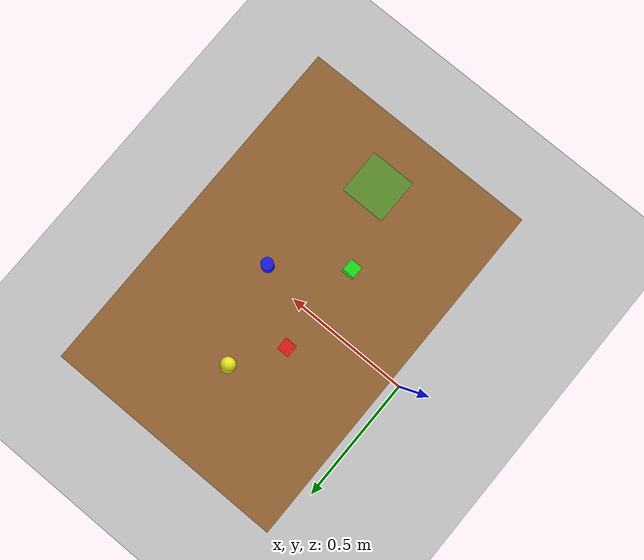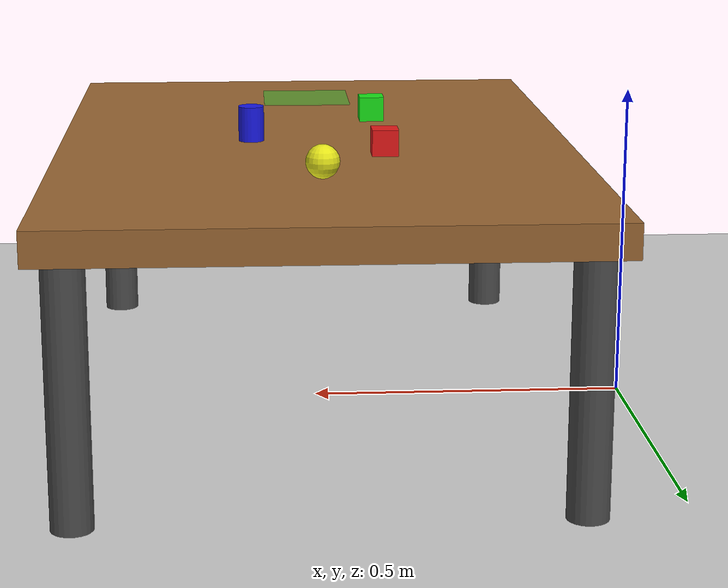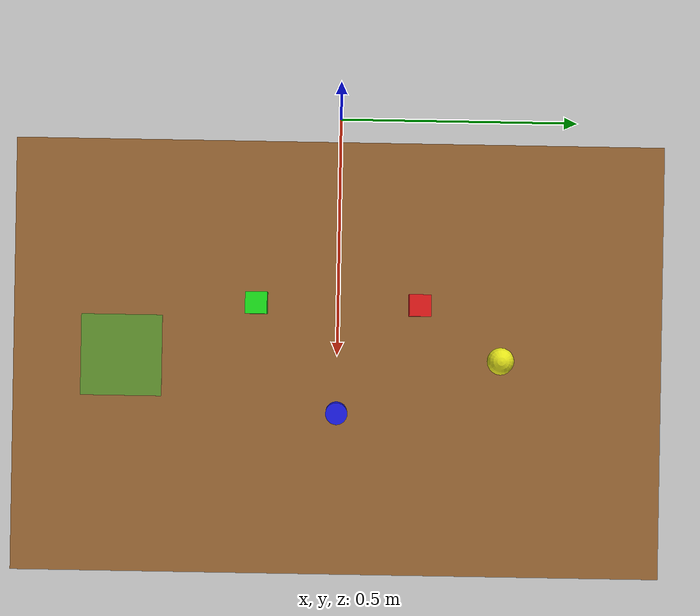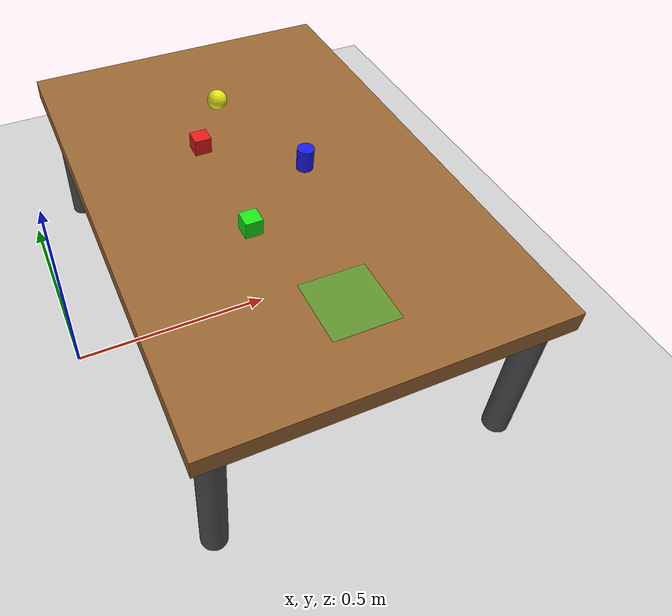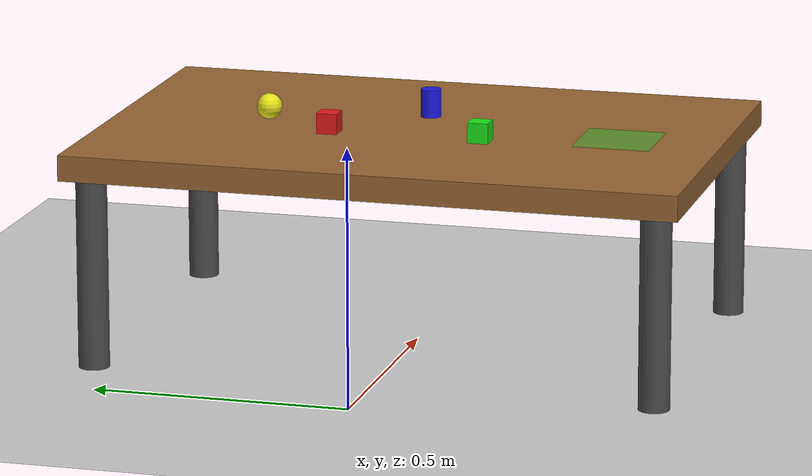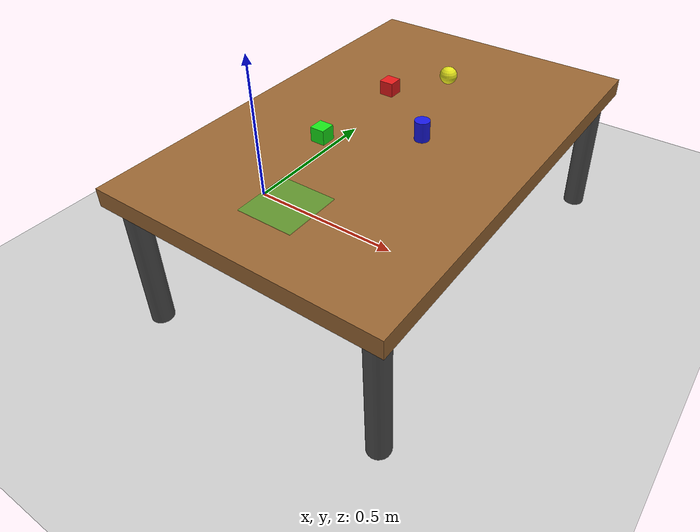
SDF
<?xml version="1.0" ?>
<sdf version="1.7">
  <world name="pick_and_place_world">

    <!-- Physics -->
    <physics name="1ms" type="ignored">
      <max_step_size>0.001</max_step_size>
      <real_time_factor>1.0</real_time_factor>
    </physics>

    <!-- Plugins for GZ Sim -->
    <plugin filename="libgz-sim-physics-system.so" name="gz::sim::systems::Physics"/>
    <plugin filename="libgz-sim-user-commands-system.so" name="gz::sim::systems::UserCommands"/>
    <plugin filename="libgz-sim-scene-broadcaster-system.so" name="gz::sim::systems::SceneBroadcaster"/>
    <plugin filename="libgz-sim-contact-system.so" name="gz::sim::systems::Contact"/>

    <!-- Lighting -->
    <light type="directional" name="sun">
      <cast_shadows>true</cast_shadows>
      <pose>0 0 10 0 0 0</pose>
      <diffuse>0.8 0.8 0.8 1</diffuse>
      <specular>0.2 0.2 0.2 1</specular>
      <attenuation>
        <range>1000</range>
        <constant>0.9</constant>
        <linear>0.01</linear>
        <quadratic>0.001</quadratic>
      </attenuation>
      <direction>-0.5 0.1 -0.9</direction>
    </light>

    <!-- Ground Plane -->
    <model name="ground_plane">
      <static>true</static>
      <link name="link">
        <collision name="collision">
          <geometry>
            <plane>
              <normal>0 0 1</normal>
              <size>100 100</size>
            </plane>
          </geometry>
        </collision>
        <visual name="visual">
          <geometry>
            <plane>
              <normal>0 0 1</normal>
              <size>100 100</size>
            </plane>
          </geometry>
          <material>
            <ambient>0.8 0.8 0.8 1</ambient>
            <diffuse>0.8 0.8 0.8 1</diffuse>
            <specular>0.8 0.8 0.8 1</specular>
          </material>
        </visual>
      </link>
    </model>

    <!-- Work Table -->
    <model name="work_table">
      <static>true</static>
      <pose>0.5 0 0.4 0 0 0</pose>
      <link name="table_top">
        <collision name="collision">
          <geometry>
            <box>
              <size>0.8 1.2 0.05</size>
            </box>
          </geometry>
        </collision>
        <visual name="visual">
          <geometry>
            <box>
              <size>0.8 1.2 0.05</size>
            </box>
          </geometry>
          <material>
            <ambient>0.6 0.4 0.2 1</ambient>
            <diffuse>0.6 0.4 0.2 1</diffuse>
            <specular>0.1 0.1 0.1 1</specular>
          </material>
        </visual>
      </link>
      <!-- Table legs -->
      <link name="leg1">
        <pose>0.35 0.55 -0.2 0 0 0</pose>
        <collision name="collision">
          <geometry>
            <cylinder>
              <radius>0.03</radius>
              <length>0.4</length>
            </cylinder>
          </geometry>
        </collision>
        <visual name="visual">
          <geometry>
            <cylinder>
              <radius>0.03</radius>
              <length>0.4</length>
            </cylinder>
          </geometry>
          <material>
            <ambient>0.3 0.3 0.3 1</ambient>
            <diffuse>0.3 0.3 0.3 1</diffuse>
          </material>
        </visual>
      </link>
      <link name="leg2">
        <pose>0.35 -0.55 -0.2 0 0 0</pose>
        <collision name="collision">
          <geometry>
            <cylinder>
              <radius>0.03</radius>
              <length>0.4</length>
            </cylinder>
          </geometry>
        </collision>
        <visual name="visual">
          <geometry>
            <cylinder>
              <radius>0.03</radius>
              <length>0.4</length>
            </cylinder>
          </geometry>
          <material>
            <ambient>0.3 0.3 0.3 1</ambient>
            <diffuse>0.3 0.3 0.3 1</diffuse>
          </material>
        </visual>
      </link>
      <link name="leg3">
        <pose>-0.35 0.55 -0.2 0 0 0</pose>
        <collision name="collision">
          <geometry>
            <cylinder>
              <radius>0.03</radius>
              <length>0.4</length>
            </cylinder>
          </geometry>
        </collision>
        <visual name="visual">
          <geometry>
            <cylinder>
              <radius>0.03</radius>
              <length>0.4</length>
            </cylinder>
          </geometry>
          <material>
            <ambient>0.3 0.3 0.3 1</ambient>
            <diffuse>0.3 0.3 0.3 1</diffuse>
          </material>
        </visual>
      </link>
      <link name="leg4">
        <pose>-0.35 -0.55 -0.2 0 0 0</pose>
        <collision name="collision">
          <geometry>
            <cylinder>
              <radius>0.03</radius>
              <length>0.4</length>
            </cylinder>
          </geometry>
        </collision>
        <visual name="visual">
          <geometry>
            <cylinder>
              <radius>0.03</radius>
              <length>0.4</length>
            </cylinder>
          </geometry>
          <material>
            <ambient>0.3 0.3 0.3 1</ambient>
            <diffuse>0.3 0.3 0.3 1</diffuse>
          </material>
        </visual>
      </link>
      <joint name="leg1_joint" type="fixed">
        <parent>table_top</parent>
        <child>leg1</child>
      </joint>
      <joint name="leg2_joint" type="fixed">
        <parent>table_top</parent>
        <child>leg2</child>
      </joint>
      <joint name="leg3_joint" type="fixed">
        <parent>table_top</parent>
        <child>leg3</child>
      </joint>
      <joint name="leg4_joint" type="fixed">
        <parent>table_top</parent>
        <child>leg4</child>
      </joint>
    </model>

    <!-- Red Cube - Object to pick -->
    <model name="red_cube">
      <pose>0.4 0.15 0.45 0 0 0</pose>
      <link name="link">
        <inertial>
          <mass>0.1</mass>
          <inertia>
            <ixx>0.000017</ixx>
            <ixy>0</ixy>
            <ixz>0</ixz>
            <iyy>0.000017</iyy>
            <iyz>0</iyz>
            <izz>0.000017</izz>
          </inertia>
        </inertial>
        <collision name="collision">
          <geometry>
            <box>
              <size>0.04 0.04 0.04</size>
            </box>
          </geometry>
          <surface>
            <friction>
              <ode>
                <mu>1.0</mu>
                <mu2>1.0</mu2>
              </ode>
            </friction>
          </surface>
        </collision>
        <visual name="visual">
          <geometry>
            <box>
              <size>0.04 0.04 0.04</size>
            </box>
          </geometry>
          <material>
            <ambient>0.9 0.1 0.1 1</ambient>
            <diffuse>0.9 0.1 0.1 1</diffuse>
            <specular>0.5 0.5 0.5 1</specular>
          </material>
        </visual>
      </link>
    </model>

    <!-- Green Cube -->
    <model name="green_cube">
      <pose>0.4 -0.15 0.45 0 0 0</pose>
      <link name="link">
        <inertial>
          <mass>0.1</mass>
          <inertia>
            <ixx>0.000017</ixx>
            <ixy>0</ixy>
            <ixz>0</ixz>
            <iyy>0.000017</iyy>
            <iyz>0</iyz>
            <izz>0.000017</izz>
          </inertia>
        </inertial>
        <collision name="collision">
          <geometry>
            <box>
              <size>0.04 0.04 0.04</size>
            </box>
          </geometry>
          <surface>
            <friction>
              <ode>
                <mu>1.0</mu>
                <mu2>1.0</mu2>
              </ode>
            </friction>
          </surface>
        </collision>
        <visual name="visual">
          <geometry>
            <box>
              <size>0.04 0.04 0.04</size>
            </box>
          </geometry>
          <material>
            <ambient>0.1 0.9 0.1 1</ambient>
            <diffuse>0.1 0.9 0.1 1</diffuse>
            <specular>0.5 0.5 0.5 1</specular>
          </material>
        </visual>
      </link>
    </model>

    <!-- Blue Cylinder -->
    <model name="blue_cylinder">
      <pose>0.6 0 0.45 0 0 0</pose>
      <link name="link">
        <inertial>
          <mass>0.15</mass>
          <inertia>
            <ixx>0.000025</ixx>
            <ixy>0</ixy>
            <ixz>0</ixz>
            <iyy>0.000025</iyy>
            <iyz>0</iyz>
            <izz>0.000018</izz>
          </inertia>
        </inertial>
        <collision name="collision">
          <geometry>
            <cylinder>
              <radius>0.02</radius>
              <length>0.06</length>
            </cylinder>
          </geometry>
          <surface>
            <friction>
              <ode>
                <mu>1.0</mu>
                <mu2>1.0</mu2>
              </ode>
            </friction>
          </surface>
        </collision>
        <visual name="visual">
          <geometry>
            <cylinder>
              <radius>0.02</radius>
              <length>0.06</length>
            </cylinder>
          </geometry>
          <material>
            <ambient>0.1 0.1 0.9 1</ambient>
            <diffuse>0.1 0.1 0.9 1</diffuse>
            <specular>0.5 0.5 0.5 1</specular>
          </material>
        </visual>
      </link>
    </model>

    <!-- Yellow Sphere -->
    <model name="yellow_sphere">
      <pose>0.5 0.3 0.45 0 0 0</pose>
      <link name="link">
        <inertial>
          <mass>0.08</mass>
          <inertia>
            <ixx>0.000008</ixx>
            <ixy>0</ixy>
            <ixz>0</ixz>
            <iyy>0.000008</iyy>
            <iyz>0</iyz>
            <izz>0.000008</izz>
          </inertia>
        </inertial>
        <collision name="collision">
          <geometry>
            <sphere>
              <radius>0.025</radius>
            </sphere>
          </geometry>
          <surface>
            <friction>
              <ode>
                <mu>1.0</mu>
                <mu2>1.0</mu2>
              </ode>
            </friction>
          </surface>
        </collision>
        <visual name="visual">
          <geometry>
            <sphere>
              <radius>0.025</radius>
            </sphere>
          </geometry>
          <material>
            <ambient>0.9 0.9 0.1 1</ambient>
            <diffuse>0.9 0.9 0.1 1</diffuse>
            <specular>0.5 0.5 0.5 1</specular>
          </material>
        </visual>
      </link>
    </model>

    <!-- Place Target Area (visual marker) -->
    <model name="place_area">
      <static>true</static>
      <pose>0.5 -0.4 0.426 0 0 0</pose>
      <link name="link">
        <visual name="visual">
          <geometry>
            <box>
              <size>0.15 0.15 0.002</size>
            </box>
          </geometry>
          <material>
            <ambient>0.2 0.8 0.2 0.5</ambient>
            <diffuse>0.2 0.8 0.2 0.5</diffuse>
          </material>
        </visual>
      </link>
    </model>

  </world>
</sdf>
